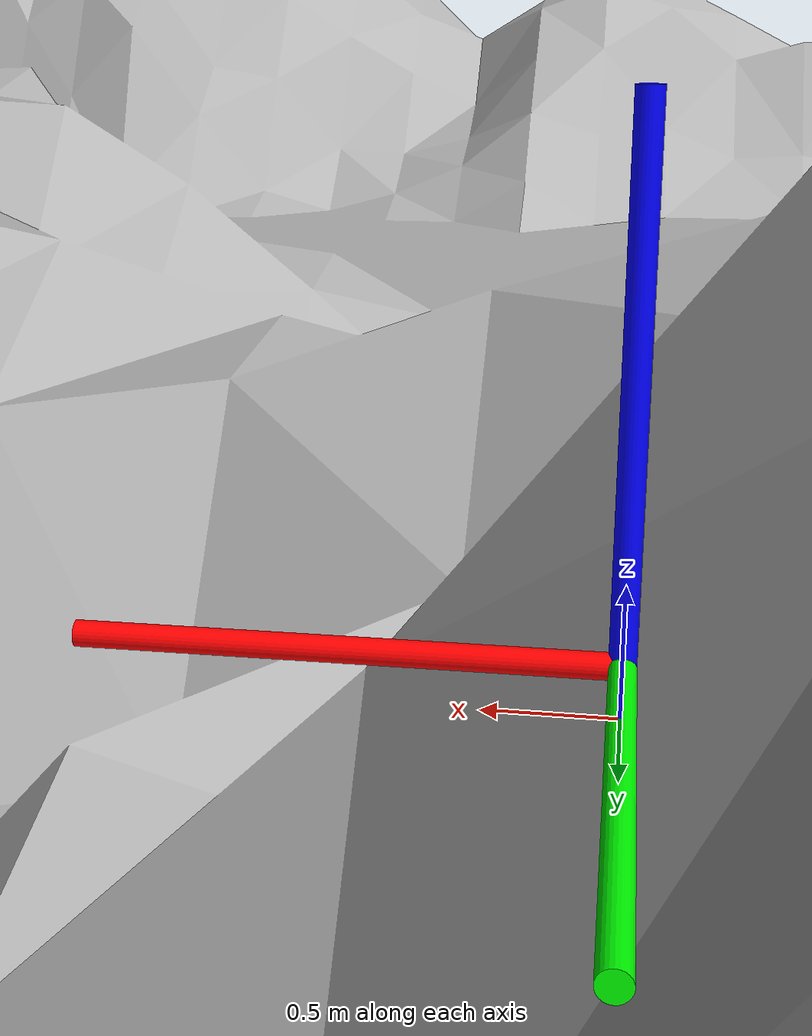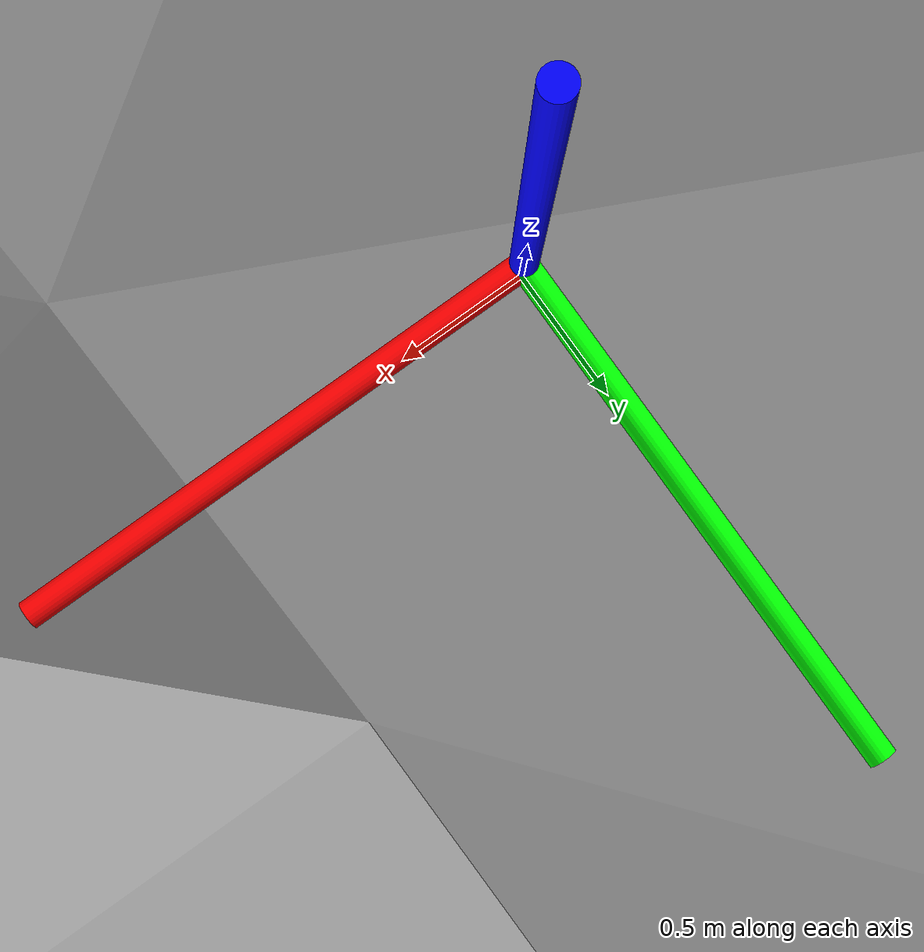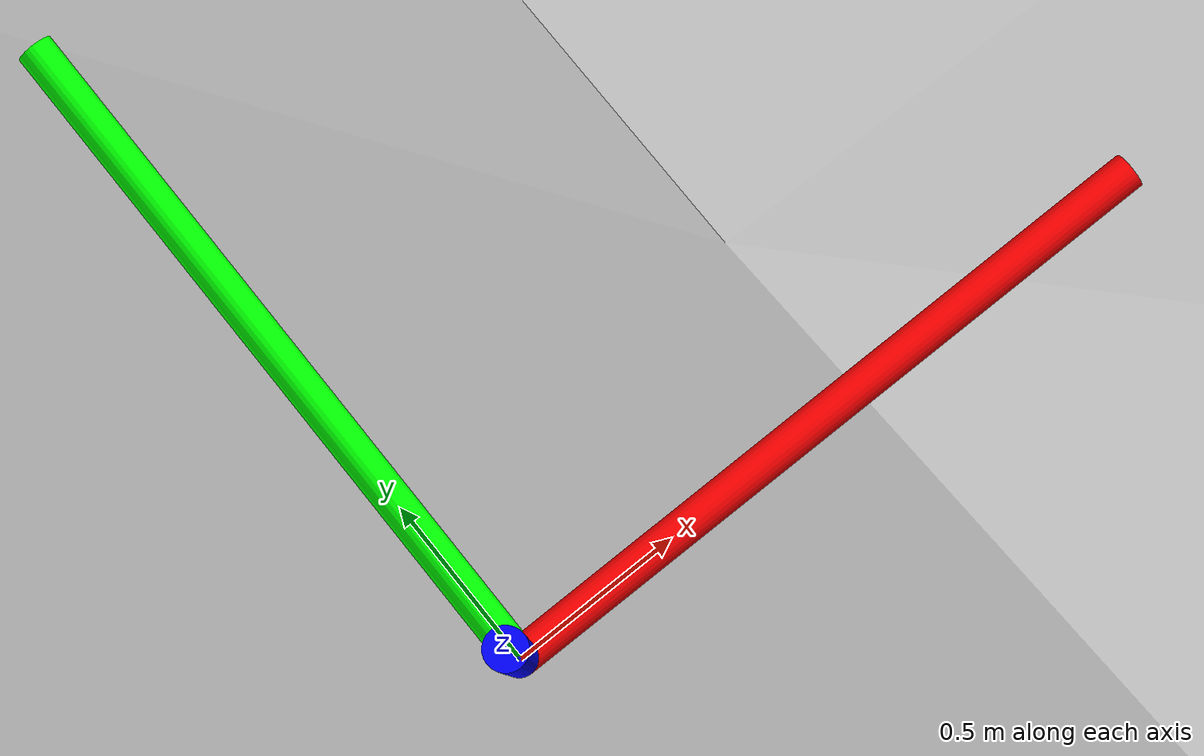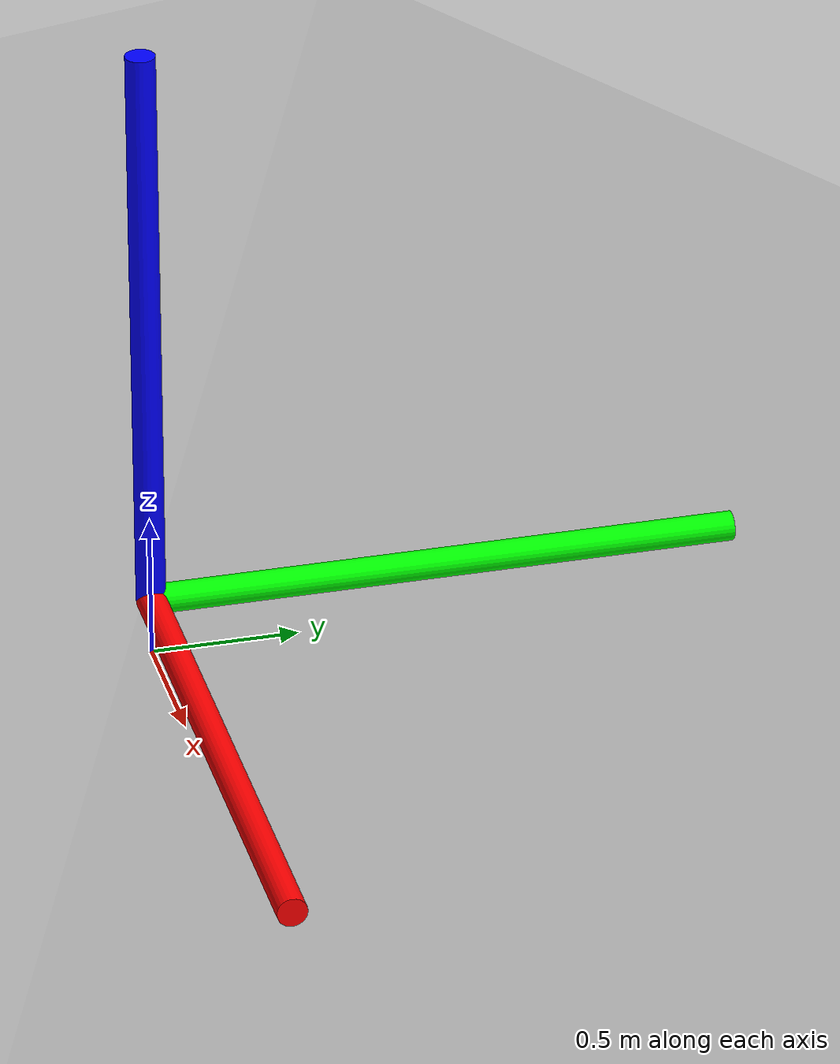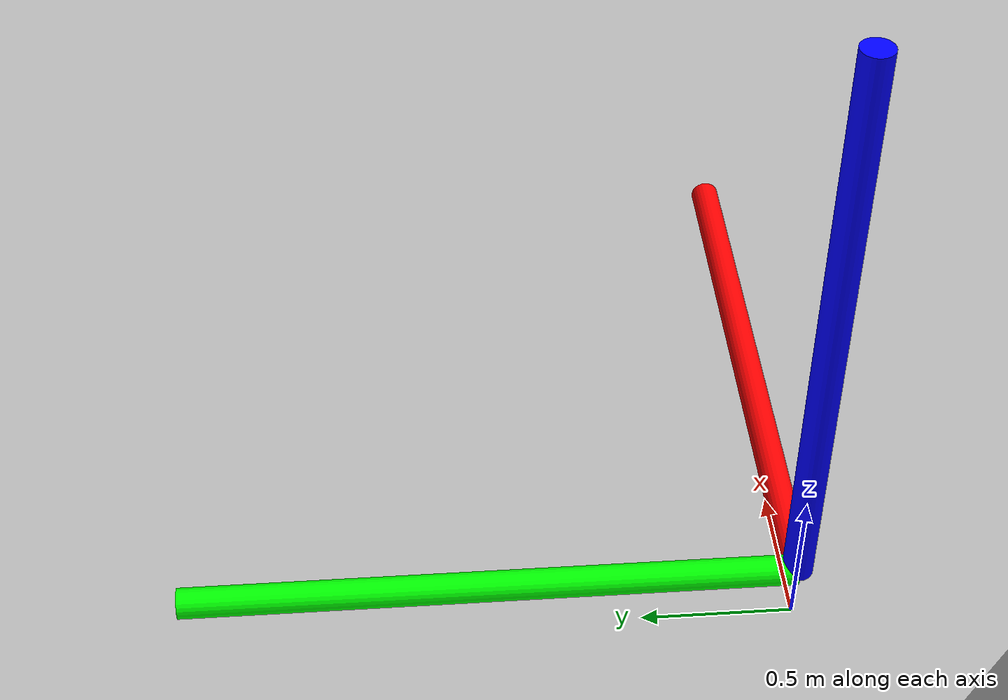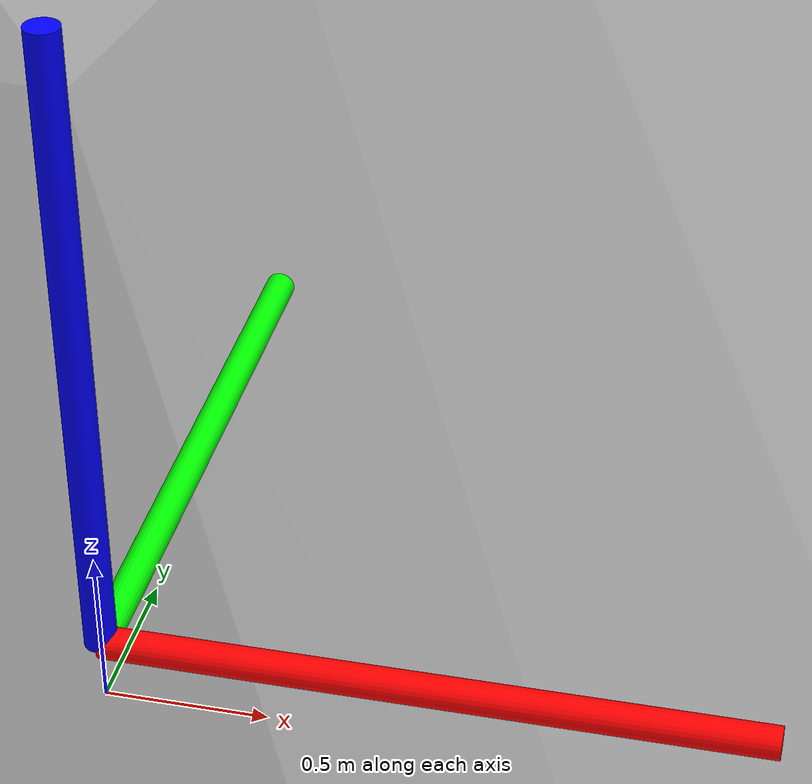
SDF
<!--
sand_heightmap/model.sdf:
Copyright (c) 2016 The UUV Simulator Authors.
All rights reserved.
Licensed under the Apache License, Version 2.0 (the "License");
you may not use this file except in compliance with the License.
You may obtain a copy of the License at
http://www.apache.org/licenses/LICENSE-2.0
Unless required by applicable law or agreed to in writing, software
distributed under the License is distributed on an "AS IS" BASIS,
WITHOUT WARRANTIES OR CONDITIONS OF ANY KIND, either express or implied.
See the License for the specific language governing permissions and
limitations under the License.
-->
<?xml version="1.0" ?>
<sdf version="1.6">
  <world name="bluerov2_heavy_underwater">

    <!-- Base Gazebo plugins -->
    <plugin
        filename="gz-sim-physics-system"
        name="gz::sim::systems::Physics">
    </plugin>
    <plugin
        filename="gz-sim-sensors-system"
        name="gz::sim::systems::Sensors">
      <render_engine>ogre2</render_engine>
    </plugin>
    <plugin
        filename="gz-sim-user-commands-system"
        name="gz::sim::systems::UserCommands">
    </plugin>
    <plugin
        filename="gz-sim-scene-broadcaster-system"
        name="gz::sim::systems::SceneBroadcaster">
    </plugin>

    <!-- IMU plugin manages all IMU sensors -->
    <plugin filename="libgz-sim-imu-system.so"
            name="gz::sim::systems::Imu">
    </plugin>
    <!-- camera plugin manages all IMU sensors -->
    <!-- Buoyancy plugin manages buoyancy for all models -->
    <plugin
        filename="gz-sim-buoyancy-system"
        name="gz::sim::systems::Buoyancy">
      <!-- Fluid density is 1 (air) above 0 and 1000 (water) below 0 -->
      <graded_buoyancy>
        <default_density>1000</default_density>
        <density_change>
          <above_depth>0</above_depth>
          <density>1</density>
        </density_change>
      </graded_buoyancy>
      <!-- No explicit model filter: apply to runtime-spawned robot names (e.g. rov1/rov2). -->
    </plugin>

    <include>
      <uri>https://fuel.gazebosim.org/1.0/OpenRobotics/models/Sun</uri>
    </include>

    <include>
      <uri>model://sand_heightmap</uri>
      <pose>0 7 -10 0 0 0</pose>
    </include>

    <include>
      <uri>model://axes</uri>
      <pose>0 0 0.2 0 0 0</pose>
    </include>

  </world>
</sdf>

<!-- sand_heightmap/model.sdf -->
<sdf version="1.5">
  <model name="sand_heightmap">
    <static>true</static>
    <link name="link">
      <collision name="ground">
        <pose>0 0 0 0 0 0</pose>
        <geometry>
          <mesh><uri>model://sand_heightmap/heightmap.dae</uri></mesh>
        </geometry>
      </collision>

      <visual name="ground_sand">
        <cast_shadows>false</cast_shadows>
        <pose>0 0 0 0 0 0</pose>
        <geometry>
          <mesh><uri>model://sand_heightmap/heightmap.dae</uri></mesh>
        </geometry>
      </visual>
    </link>
  </model>
</sdf>

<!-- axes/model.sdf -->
<sdf version='1.6'>
  <model name='axes'>
    <static>true</static>
    <pose>0 0 0 0 0 0</pose>

    <link name="x_axis">
      <visual name="x_visual">
        <pose degrees="true">1 0 0 90 0 90</pose>
        <geometry>
          <cylinder>
            <radius>0.05</radius>
            <length>2</length>
          </cylinder>
        </geometry>
        <material>
          <ambient>1 0 0 1</ambient>
          <diffuse>1 0 0 1</diffuse>
          <specular>1 0 0 1</specular>
        </material>
      </visual>
    </link>

    <link name="y_axis">
      <visual name="y_visual">
        <pose degrees="true">0 1 0 0 90 90</pose>
        <geometry>
          <cylinder>
            <radius>0.05</radius>
            <length>2</length>
          </cylinder>
        </geometry>
        <material>
          <ambient>0 1 0 1</ambient>
          <diffuse>0 1 0 1</diffuse>
          <specular>0 1 0 1</specular>
        </material>
      </visual>
    </link>

    <link name="z_axis">
      <visual name="z_visual">
        <pose degrees="true">0 0 1 0 0 0</pose>
        <geometry>
          <cylinder>
            <radius>0.05</radius>
            <length>2</length>
          </cylinder>
        </geometry>
        <material>
          <ambient>0 0 1 1</ambient>
          <diffuse>0 0 1 1</diffuse>
          <specular>0 0 1 1</specular>
        </material>
      </visual>
    </link>

  </model>
</sdf>
